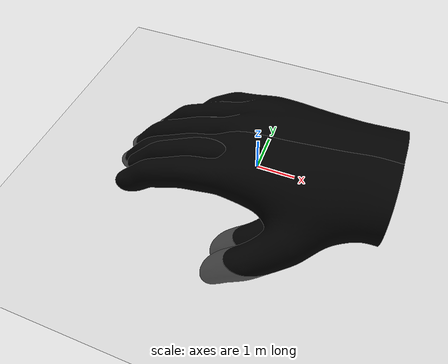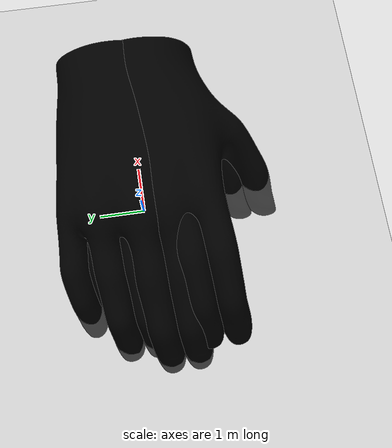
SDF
<sdf version="1.7">
 <world name="Configurable_workscene">
  <light name="sun" type="directional">
   <pose>0 0 10 0 -0 0</pose>
   <diffuse>0.8 0.8 0.8 1</diffuse>
   <specular>0.2 0.2 0.2 1</specular>
   <attenuation>
    <range>1000</range>
    <constant>0.9</constant>
    <linear>0.01</linear>
    <quadratic>0.001</quadratic>
   </attenuation>
   <direction>-0.5 0.1 -0.9</direction>
   <spot><inner_angle>0</inner_angle><outer_angle>0</outer_angle><falloff>0</falloff></spot>
  </light>
  <model name="ground_plane">
   <static>1</static>
   <link name="link">
    <collision name="collision">
     <geometry><plane><normal>0 0 1</normal><size>100 100</size></plane></geometry>
     <surface>
      <contact><collide_bitmask>65535</collide_bitmask></contact>
      <friction><ode><mu>100</mu><mu2>50</mu2></ode></friction>
     </surface>
    </collision>
    <visual name="visual">
     <cast_shadows>0</cast_shadows>
     <geometry><plane><normal>0 0 1</normal><size>100 100</size></plane></geometry>
     <material>
      <script><uri>file://media/materials/scripts/gazebo.material</uri><name>Gazebo/Grey</name></script>
     </material>
    </visual>
   </link>
  </model>
  <model name="cube_table">
   <link name="link">
    <inertial>
     <mass>1</mass>
     <inertia>
      <ixx>0.166667</ixx>
      <ixy>0</ixy>
      <ixz>0</ixz>
      <iyy>0.166667</iyy>
      <iyz>0</iyz>
      <izz>0.166667</izz>
     </inertia>
    </inertial>
    <visual name="visual">
     <geometry><box><size>0.6 1.2 0.2</size></box></geometry>
     <material>
      <script><name>Gazebo/White</name><uri>file://media/materials/scripts/gazebo.material</uri></script>
      <shader type="pixel"><normal_map>__default__</normal_map></shader>
      <ambient>0.3 0.3 0.3 1</ambient>
      <diffuse>0.7 0.7 0.7 1</diffuse>
      <specular>0.01 0.01 0.01 1</specular>
      <emissive>0 0 0 1</emissive>
     </material>
    </visual>
    <collision name="collision">
     <geometry><box><size>0.6 1.2 0.2</size></box></geometry>
     <surface>
      <friction>
       <ode><mu>1</mu><mu2>1</mu2><fdir1>0 0 0</fdir1><slip1>0</slip1><slip2>0</slip2></ode>
       <torsional>
        <coefficient>1</coefficient>
        <patch_radius>0</patch_radius>
        <surface_radius>0</surface_radius>
        <use_patch_radius>1</use_patch_radius>
        <ode><slip>0</slip></ode>
       </torsional>
      </friction>
      <bounce><restitution_coefficient>0</restitution_coefficient><threshold>1e+06</threshold></bounce>
      <contact>
       <collide_without_contact>0</collide_without_contact>
       <collide_without_contact_bitmask>1</collide_without_contact_bitmask>
       <collide_bitmask>1</collide_bitmask>
       <ode>
        <soft_cfm>0</soft_cfm>
        <soft_erp>0.2</soft_erp>
        <kp>1e+13</kp>
        <kd>1</kd>
        <max_vel>0.01</max_vel>
        <min_depth>0</min_depth>
       </ode>
       <bullet>
        <split_impulse>1</split_impulse>
        <split_impulse_penetration_threshold>-0.01</split_impulse_penetration_threshold>
        <soft_cfm>0</soft_cfm>
        <soft_erp>0.2</soft_erp>
        <kp>1e+13</kp>
        <kd>1</kd>
       </bullet>
      </contact>
     </surface>
    </collision>
   </link>
   <static>1</static>
   <pose>0.6 0 0.1 0 -0 0</pose>
  </model>
  <model name="workpiece">
   <link name="link">
    <inertial><mass>1</mass><pose>0.581167 0.105756 0.205008 0 -0 0</pose></inertial>
    <visual name="visual">
     <geometry><box><size>0.2 0.2 0.01</size></box></geometry>
     <material>
      <script><name>Gazebo/White</name><uri>file://media/materials/scripts/gazebo.material</uri></script>
      <shader type="pixel"><normal_map>__default__</normal_map></shader>
     </material>
    </visual>
   </link>
   <static>1</static>
   <pose>0.6 0 0.205 0 -0 0</pose>
  </model>
  <model name="hole_1">
   <link name="link">
    <inertial>
     <mass>1</mass>
     <inertia><ixx>0.145833</ixx><ixy>0</ixy><ixz>0</ixz><iyy>0.145833</iyy><iyz>0</iyz><izz>0.125</izz></inertia>
     <pose>0.574327 -0.046666 0.210008 0 -0 0</pose>
    </inertial>
    <visual name="visual">
     <geometry><cylinder><radius>0.0025</radius><length>0.0001</length></cylinder></geometry>
     <material>
      <script><name>Gazebo/Black</name><uri>file://media/materials/scripts/gazebo.material</uri></script>
     </material>
    </visual>
   </link>
   <static>1</static>
   <pose>0.6 0 0 0 -0 0</pose>
  </model>
  <model name="hole_2">
   <link name="link">
    <inertial>
     <mass>1</mass>
     <inertia><ixx>0.145833</ixx><ixy>0</ixy><ixz>0</ixz><iyy>0.145833</iyy><iyz>0</iyz><izz>0.125</izz></inertia>
     <pose>0.579166 0.013685 0.210008 0 -0 0</pose>
    </inertial>
    <visual name="visual">
     <geometry><cylinder><radius>0.0025</radius><length>0.0001</length></cylinder></geometry>
     <material>
      <script><name>Gazebo/Black</name><uri>file://media/materials/scripts/gazebo.material</uri></script>
     </material>
    </visual>
   </link>
   <static>1</static>
   <pose>0.65 0 0 0 -0 0</pose>
  </model>
  <model name="hole_3">
   <link name="link">
    <inertial>
     <mass>1</mass>
     <inertia><ixx>0.145833</ixx><ixy>0</ixy><ixz>0</ixz><iyy>0.145833</iyy><iyz>0</iyz><izz>0.125</izz></inertia>
     <pose>0.631509 0.026969 0.210008 0 -0 0</pose>
    </inertial>
    <visual name="visual">
     <geometry><cylinder><radius>0.0025</radius><length>0.0001</length></cylinder></geometry>
     <material>
      <script><name>Gazebo/Black</name><uri>file://media/materials/scripts/gazebo.material</uri></script>
     </material>
    </visual>
   </link>
   <static>1</static>
   <pose>0.55 0 0 0 -0 0</pose>
  </model>
  <model name="hand_1">
   <link name="link"><inertial><mass>1</mass><pose>0.659365 -0.323433 0.200508 0 -0 0</pose></inertial></link>
   <link name="hand_1">
    <inertial>
     <mass>80</mass>
     <inertia><ixx>24.88</ixx><ixy>0</ixy><ixz>0</ixz><iyy>25.73</iyy><iyz>0</iyz><izz>2.48</izz></inertia>
    </inertial>
    <visual name="visual">
     <pose>0 -0 0.02 0 -0 0</pose>
     <geometry><mesh><uri>model://hand_1/meshes/one_hand.dae</uri></mesh></geometry>
     <material>
      <shader type="pixel"><normal_map>__default__</normal_map></shader>
      <script><name>ModelPreview_3::hand_1::visual_MATERIAL_</name><uri>__default__</uri></script>
      <ambient>0 0 0 1</ambient>
      <diffuse>0 0 0 1</diffuse>
      <specular>0 0 0 1</specular>
      <emissive>0 0 0 1</emissive>
     </material>
    </visual>
    <collision name="collision">
     <pose>0 -0 0.02 0 -0 0</pose>
     <geometry><mesh><uri>model://hand_1/meshes/one_hand.dae</uri><scale>1 1 1</scale></mesh></geometry>
     <surface>
      <friction>
       <ode><mu>1</mu><mu2>1</mu2><fdir1>0 0 0</fdir1><slip1>0</slip1><slip2>0</slip2></ode>
       <torsional>
        <coefficient>1</coefficient>
        <patch_radius>0</patch_radius>
        <surface_radius>0</surface_radius>
        <use_patch_radius>1</use_patch_radius>
        <ode><slip>0</slip></ode>
       </torsional>
      </friction>
      <bounce><restitution_coefficient>0</restitution_coefficient><threshold>1e+06</threshold></bounce>
      <contact>
       <collide_without_contact>0</collide_without_contact>
       <collide_without_contact_bitmask>1</collide_without_contact_bitmask>
       <collide_bitmask>1</collide_bitmask>
       <ode>
        <soft_cfm>0</soft_cfm>
        <soft_erp>0.2</soft_erp>
        <kp>1e+13</kp>
        <kd>1</kd>
        <max_vel>0.01</max_vel>
        <min_depth>0</min_depth>
       </ode>
       <bullet>
        <split_impulse>1</split_impulse>
        <split_impulse_penetration_threshold>-0.01</split_impulse_penetration_threshold>
        <soft_cfm>0</soft_cfm>
        <soft_erp>0.2</soft_erp>
        <kp>1e+13</kp>
        <kd>1</kd>
       </bullet>
      </contact>
     </surface>
    </collision>
   </link>
   <link name="safety_cube">
    <inertial>
     <mass>1</mass>
     <inertia>
      <ixx>0.166667</ixx>
      <ixy>0</ixy>
      <ixz>0</ixz>
      <iyy>0.166667</iyy>
      <iyz>0</iyz>
      <izz>0.166667</izz>
     </inertia>
    </inertial>
    <visual name="visual">
     <geometry><cylinder><radius>0.1</radius><length>0.001</length></cylinder></geometry>
     <material>
      <script><name>Gazebo/Red</name><uri>file://media/materials/scripts/gazebo.material</uri></script>
      <shader type="pixel"><normal_map>__default__</normal_map></shader>
      <ambient>1 0 0 1</ambient>
      <diffuse>1 0 0 1</diffuse>
      <specular>0.1 0.1 0.1 1</specular>
      <emissive>0 0 0 1</emissive>
     </material>
     <transparency>0.6</transparency>
    </visual>
   </link>
   <static>1</static>
   <pose>0.6 -0.3 0.001 0 -0 0</pose>
  </model>
  <model name="hand_2">
   <link name="link"><inertial><mass>1</mass><pose>0.410654 -0.298224 0.200509 0 -0 0</pose></inertial></link>
   <link name="hand_2">
    <inertial>
     <mass>80</mass>
     <inertia><ixx>24.88</ixx><ixy>0</ixy><ixz>0</ixz><iyy>25.73</iyy><iyz>0</iyz><izz>2.48</izz></inertia>
    </inertial>
    <visual name="visual">
     <pose>0 -0 0.02 0 -0 0</pose>
     <geometry><mesh><uri>model://hand_2/meshes/one_hand.dae</uri></mesh></geometry>
     <material>
      <shader type="pixel"><normal_map>__default__</normal_map></shader>
      <script><name>ModelPreview_3::hand_2::visual_MATERIAL_</name><uri>__default__</uri></script>
      <ambient>0 0 0 1</ambient>
      <diffuse>0 0 0 1</diffuse>
      <specular>0 0 0 1</specular>
      <emissive>0 0 0 1</emissive>
     </material>
    </visual>
    <collision name="collision">
     <pose>0 -0 0.02 0 -0 0</pose>
     <geometry><mesh><uri>model://hand_2/meshes/one_hand.dae</uri><scale>1 1 1</scale></mesh></geometry>
     <surface>
      <friction>
       <ode><mu>1</mu><mu2>1</mu2><fdir1>0 0 0</fdir1><slip1>0</slip1><slip2>0</slip2></ode>
       <torsional>
        <coefficient>1</coefficient>
        <patch_radius>0</patch_radius>
        <surface_radius>0</surface_radius>
        <use_patch_radius>1</use_patch_radius>
        <ode><slip>0</slip></ode>
       </torsional>
      </friction>
      <bounce><restitution_coefficient>0</restitution_coefficient><threshold>1e+06</threshold></bounce>
      <contact>
       <collide_without_contact>0</collide_without_contact>
       <collide_without_contact_bitmask>1</collide_without_contact_bitmask>
       <collide_bitmask>1</collide_bitmask>
       <ode>
        <soft_cfm>0</soft_cfm>
        <soft_erp>0.2</soft_erp>
        <kp>1e+13</kp>
        <kd>1</kd>
        <max_vel>0.01</max_vel>
        <min_depth>0</min_depth>
       </ode>
       <bullet>
        <split_impulse>1</split_impulse>
        <split_impulse_penetration_threshold>-0.01</split_impulse_penetration_threshold>
        <soft_cfm>0</soft_cfm>
        <soft_erp>0.2</soft_erp>
        <kp>1e+13</kp>
        <kd>1</kd>
       </bullet>
      </contact>
     </surface>
    </collision>
   </link>
   <link name="safety_cube">
    <inertial>
     <mass>1</mass>
     <inertia>
      <ixx>0.166667</ixx>
      <ixy>0</ixy>
      <ixz>0</ixz>
      <iyy>0.166667</iyy>
      <iyz>0</iyz>
      <izz>0.166667</izz>
     </inertia>
    </inertial>
    <visual name="visual">
     <geometry><cylinder><radius>0.1</radius><length>0.001</length></cylinder></geometry>
     <material>
      <script><name>Gazebo/Red</name><uri>file://media/materials/scripts/gazebo.material</uri></script>
      <shader type="pixel"><normal_map>__default__</normal_map></shader>
      <ambient>1 0 0 1</ambient>
      <diffuse>1 0 0 1</diffuse>
      <specular>0.1 0.1 0.1 1</specular>
      <emissive>0 0 0 1</emissive>
     </material>
     <transparency>0.6</transparency>
    </visual>
   </link>
   <static>1</static>
   <pose>0.6 0.3 0.001 0 -0 0</pose>
  </model>
  <plugin name="panda_joint_locker" filename="libpanda_gazebo.so"/>
  <gravity>0 0 -9.8</gravity>
  <magnetic_field>6e-06 2.3e-05 -4.2e-05</magnetic_field>
  <atmosphere type="adiabatic"/>
  <physics type="ode">
   <max_step_size>0.001</max_step_size>
   <real_time_factor>1</real_time_factor>
   <real_time_update_rate>1000</real_time_update_rate>
  </physics>
  <scene><ambient>0.4 0.4 0.4 1</ambient><background>0.7 0.7 0.7 1</background><shadows>1</shadows></scene>
  <spherical_coordinates>
   <surface_model>EARTH_WGS84</surface_model>
   <latitude_deg>0</latitude_deg>
   <longitude_deg>0</longitude_deg>
   <elevation>0</elevation>
   <heading_deg>0</heading_deg>
  </spherical_coordinates>
  <model name="workpiece_clone">
   <link name="link">
    <inertial><mass>1</mass><pose>0.581167 0.105756 0.205008 0 -0 0</pose></inertial>
    <visual name="visual">
     <geometry><box><size>0.601 1.201 0.201</size></box></geometry>
     <material>
      <script><name>Gazebo/RedTransparent</name><uri>file://media/materials/scripts/gazebo.material</uri></script>
      <shader type="pixel"><normal_map>__default__</normal_map></shader>
     </material>
    </visual>
   </link>
   <static>1</static>
   <pose>0 0 -1 0 1.57 0</pose>
  </model>
 </world>
</sdf>
